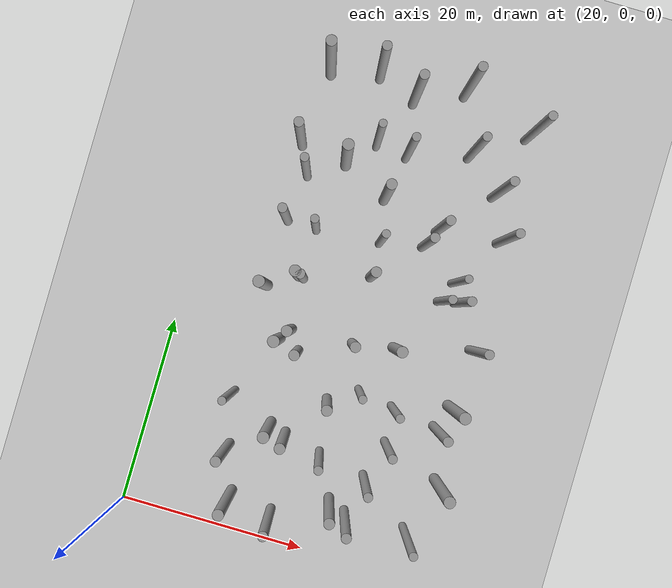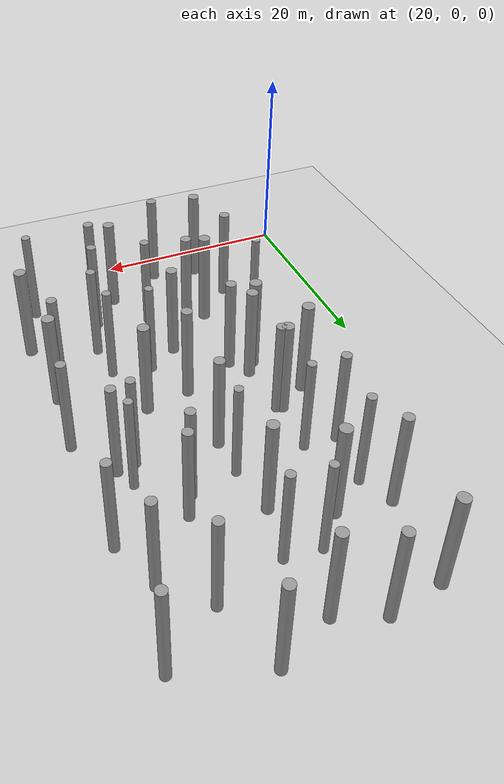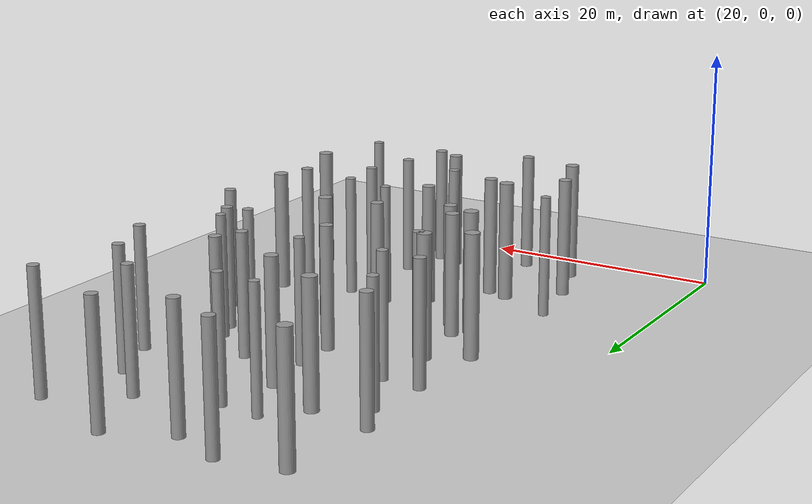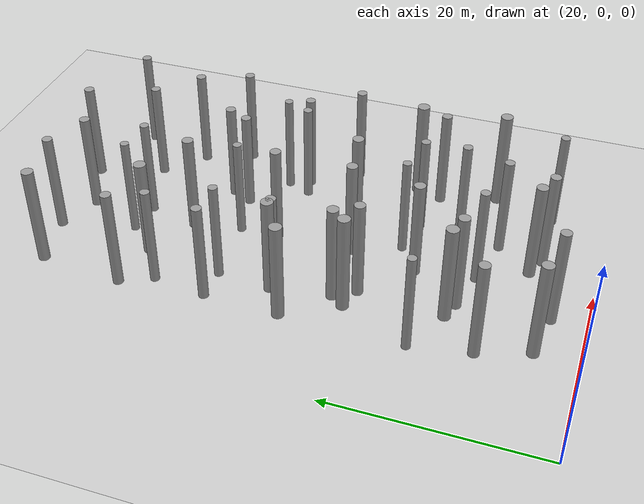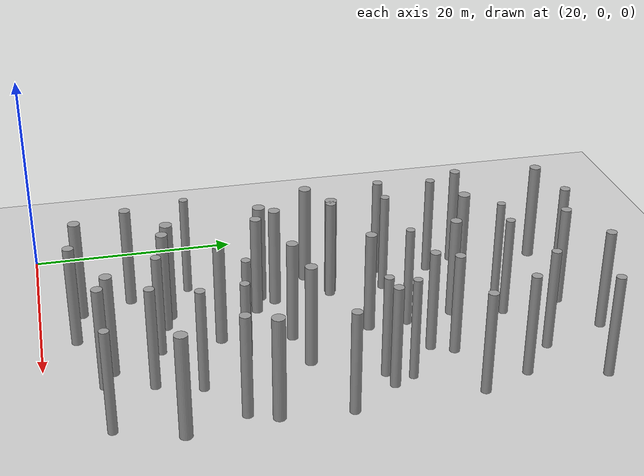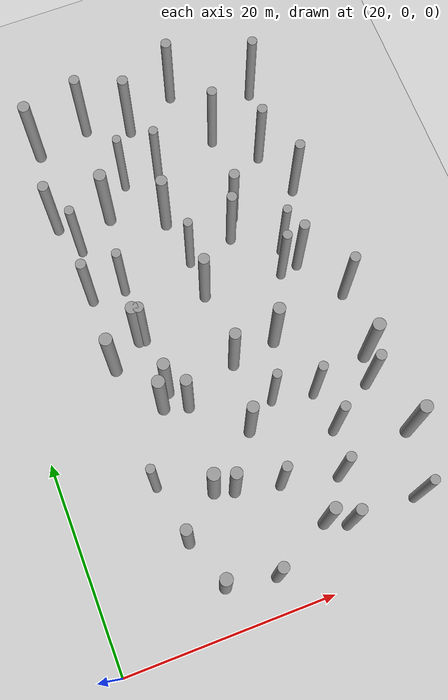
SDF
<sdf version="1.5">
 <world name="default">
  <include><uri>model://sun</uri></include>
  <include><uri>model://ground_plane</uri></include>
  <include><uri>model://asphalt_plane</uri></include>
  <model name="unit_cylinder_5">
   <pose>31.07888 4.03322 5.02000 0 -0 0</pose>
   <link name="link">
    <inertial>
     <mass>100</mass>
     <inertia><ixx>20</ixx><ixy>0</ixy><ixz>0</ixz><iyy>20</iyy><iyz>0</iyz><izz>20</izz></inertia>
    </inertial>
    <collision name="collision">
     <geometry><cylinder><radius>0.566</radius><length>10.000</length></cylinder></geometry>
    </collision>
    <visual name="visual">
     <geometry><cylinder><radius>0.566</radius><length>10.000</length></cylinder></geometry>
     <material>
      <script><name>Gazebo/Grey</name><uri>file://media/materials/scripts/gazebo.material</uri></script>
     </material>
    </visual>
   </link>
  </model>
  <model name="unit_cylinder_6">
   <pose>35.71000 3.27788 5.02000 0 -0 0</pose>
   <link name="link">
    <inertial>
     <mass>100</mass>
     <inertia><ixx>20</ixx><ixy>0</ixy><ixz>0</ixz><iyy>20</iyy><iyz>0</iyz><izz>20</izz></inertia>
    </inertial>
    <collision name="collision">
     <geometry><cylinder><radius>0.510</radius><length>10.000</length></cylinder></geometry>
    </collision>
    <visual name="visual">
     <geometry><cylinder><radius>0.510</radius><length>10.000</length></cylinder></geometry>
     <material>
      <script><name>Gazebo/Grey</name><uri>file://media/materials/scripts/gazebo.material</uri></script>
     </material>
    </visual>
   </link>
  </model>
  <model name="unit_cylinder_7">
   <pose>41.43956 6.17991 5.02000 0 -0 0</pose>
   <link name="link">
    <inertial>
     <mass>100</mass>
     <inertia><ixx>20</ixx><ixy>0</ixy><ixz>0</ixz><iyy>20</iyy><iyz>0</iyz><izz>20</izz></inertia>
    </inertial>
    <collision name="collision">
     <geometry><cylinder><radius>0.551</radius><length>10.000</length></cylinder></geometry>
    </collision>
    <visual name="visual">
     <geometry><cylinder><radius>0.551</radius><length>10.000</length></cylinder></geometry>
     <material>
      <script><name>Gazebo/Grey</name><uri>file://media/materials/scripts/gazebo.material</uri></script>
     </material>
    </visual>
   </link>
  </model>
  <model name="unit_cylinder_8">
   <pose>43.38921 5.31190 5.02000 0 -0 0</pose>
   <link name="link">
    <inertial>
     <mass>100</mass>
     <inertia><ixx>20</ixx><ixy>0</ixy><ixz>0</ixz><iyy>20</iyy><iyz>0</iyz><izz>20</izz></inertia>
    </inertial>
    <collision name="collision">
     <geometry><cylinder><radius>0.507</radius><length>10.000</length></cylinder></geometry>
    </collision>
    <visual name="visual">
     <geometry><cylinder><radius>0.507</radius><length>10.000</length></cylinder></geometry>
     <material>
      <script><name>Gazebo/Grey</name><uri>file://media/materials/scripts/gazebo.material</uri></script>
     </material>
    </visual>
   </link>
  </model>
  <model name="unit_cylinder_9">
   <pose>49.97748 5.42554 5.02000 0 -0 0</pose>
   <link name="link">
    <inertial>
     <mass>100</mass>
     <inertia><ixx>20</ixx><ixy>0</ixy><ixz>0</ixz><iyy>20</iyy><iyz>0</iyz><izz>20</izz></inertia>
    </inertial>
    <collision name="collision">
     <geometry><cylinder><radius>0.439</radius><length>10.000</length></cylinder></geometry>
    </collision>
    <visual name="visual">
     <geometry><cylinder><radius>0.439</radius><length>10.000</length></cylinder></geometry>
     <material>
      <script><name>Gazebo/Grey</name><uri>file://media/materials/scripts/gazebo.material</uri></script>
     </material>
    </visual>
   </link>
  </model>
  <model name="unit_cylinder_15">
   <pose>29.43761 8.84682 5.02000 0 -0 0</pose>
   <link name="link">
    <inertial>
     <mass>100</mass>
     <inertia><ixx>20</ixx><ixy>0</ixy><ixz>0</ixz><iyy>20</iyy><iyz>0</iyz><izz>20</izz></inertia>
    </inertial>
    <collision name="collision">
     <geometry><cylinder><radius>0.524</radius><length>10.000</length></cylinder></geometry>
    </collision>
    <visual name="visual">
     <geometry><cylinder><radius>0.524</radius><length>10.000</length></cylinder></geometry>
     <material>
      <script><name>Gazebo/Grey</name><uri>file://media/materials/scripts/gazebo.material</uri></script>
     </material>
    </visual>
   </link>
  </model>
  <model name="unit_cylinder_16">
   <pose>34.93175 11.71264 5.02000 0 -0 0</pose>
   <link name="link">
    <inertial>
     <mass>100</mass>
     <inertia><ixx>20</ixx><ixy>0</ixy><ixz>0</ixz><iyy>20</iyy><iyz>0</iyz><izz>20</izz></inertia>
    </inertial>
    <collision name="collision">
     <geometry><cylinder><radius>0.543</radius><length>10.000</length></cylinder></geometry>
    </collision>
    <visual name="visual">
     <geometry><cylinder><radius>0.543</radius><length>10.000</length></cylinder></geometry>
     <material>
      <script><name>Gazebo/Grey</name><uri>file://media/materials/scripts/gazebo.material</uri></script>
     </material>
    </visual>
   </link>
  </model>
  <model name="unit_cylinder_17">
   <pose>39.03436 10.75509 5.02000 0 -0 0</pose>
   <link name="link">
    <inertial>
     <mass>100</mass>
     <inertia><ixx>20</ixx><ixy>0</ixy><ixz>0</ixz><iyy>20</iyy><iyz>0</iyz><izz>20</izz></inertia>
    </inertial>
    <collision name="collision">
     <geometry><cylinder><radius>0.458</radius><length>10.000</length></cylinder></geometry>
    </collision>
    <visual name="visual">
     <geometry><cylinder><radius>0.458</radius><length>10.000</length></cylinder></geometry>
     <material>
      <script><name>Gazebo/Grey</name><uri>file://media/materials/scripts/gazebo.material</uri></script>
     </material>
    </visual>
   </link>
  </model>
  <model name="unit_cylinder_18">
   <pose>44.28129 9.62120 5.02000 0 -0 0</pose>
   <link name="link">
    <inertial>
     <mass>100</mass>
     <inertia><ixx>20</ixx><ixy>0</ixy><ixz>0</ixz><iyy>20</iyy><iyz>0</iyz><izz>20</izz></inertia>
    </inertial>
    <collision name="collision">
     <geometry><cylinder><radius>0.467</radius><length>10.000</length></cylinder></geometry>
    </collision>
    <visual name="visual">
     <geometry><cylinder><radius>0.467</radius><length>10.000</length></cylinder></geometry>
     <material>
      <script><name>Gazebo/Grey</name><uri>file://media/materials/scripts/gazebo.material</uri></script>
     </material>
    </visual>
   </link>
  </model>
  <model name="unit_cylinder_19">
   <pose>51.85830 11.31948 5.02000 0 -0 0</pose>
   <link name="link">
    <inertial>
     <mass>100</mass>
     <inertia><ixx>20</ixx><ixy>0</ixy><ixz>0</ixz><iyy>20</iyy><iyz>0</iyz><izz>20</izz></inertia>
    </inertial>
    <collision name="collision">
     <geometry><cylinder><radius>0.586</radius><length>10.000</length></cylinder></geometry>
    </collision>
    <visual name="visual">
     <geometry><cylinder><radius>0.586</radius><length>10.000</length></cylinder></geometry>
     <material>
      <script><name>Gazebo/Grey</name><uri>file://media/materials/scripts/gazebo.material</uri></script>
     </material>
    </visual>
   </link>
  </model>
  <model name="unit_cylinder_25">
   <pose>28.40187 14.56460 5.02000 0 -0 0</pose>
   <link name="link">
    <inertial>
     <mass>100</mass>
     <inertia><ixx>20</ixx><ixy>0</ixy><ixz>0</ixz><iyy>20</iyy><iyz>0</iyz><izz>20</izz></inertia>
    </inertial>
    <collision name="collision">
     <geometry><cylinder><radius>0.419</radius><length>10.000</length></cylinder></geometry>
    </collision>
    <visual name="visual">
     <geometry><cylinder><radius>0.419</radius><length>10.000</length></cylinder></geometry>
     <material>
      <script><name>Gazebo/Grey</name><uri>file://media/materials/scripts/gazebo.material</uri></script>
     </material>
    </visual>
   </link>
  </model>
  <model name="unit_cylinder_26">
   <pose>33.13048 12.30759 5.02000 0 -0 0</pose>
   <link name="link">
    <inertial>
     <mass>100</mass>
     <inertia><ixx>20</ixx><ixy>0</ixy><ixz>0</ixz><iyy>20</iyy><iyz>0</iyz><izz>20</izz></inertia>
    </inertial>
    <collision name="collision">
     <geometry><cylinder><radius>0.591</radius><length>10.000</length></cylinder></geometry>
    </collision>
    <visual name="visual">
     <geometry><cylinder><radius>0.591</radius><length>10.000</length></cylinder></geometry>
     <material>
      <script><name>Gazebo/Grey</name><uri>file://media/materials/scripts/gazebo.material</uri></script>
     </material>
    </visual>
   </link>
  </model>
  <model name="unit_cylinder_27">
   <pose>38.22628 16.43758 5.02000 0 -0 0</pose>
   <link name="link">
    <inertial>
     <mass>100</mass>
     <inertia><ixx>20</ixx><ixy>0</ixy><ixz>0</ixz><iyy>20</iyy><iyz>0</iyz><izz>20</izz></inertia>
    </inertial>
    <collision name="collision">
     <geometry><cylinder><radius>0.539</radius><length>10.000</length></cylinder></geometry>
    </collision>
    <visual name="visual">
     <geometry><cylinder><radius>0.539</radius><length>10.000</length></cylinder></geometry>
     <material>
      <script><name>Gazebo/Grey</name><uri>file://media/materials/scripts/gazebo.material</uri></script>
     </material>
    </visual>
   </link>
  </model>
  <model name="unit_cylinder_28">
   <pose>45.51048 13.75221 5.02000 0 -0 0</pose>
   <link name="link">
    <inertial>
     <mass>100</mass>
     <inertia><ixx>20</ixx><ixy>0</ixy><ixz>0</ixz><iyy>20</iyy><iyz>0</iyz><izz>20</izz></inertia>
    </inertial>
    <collision name="collision">
     <geometry><cylinder><radius>0.456</radius><length>10.000</length></cylinder></geometry>
    </collision>
    <visual name="visual">
     <geometry><cylinder><radius>0.456</radius><length>10.000</length></cylinder></geometry>
     <material>
      <script><name>Gazebo/Grey</name><uri>file://media/materials/scripts/gazebo.material</uri></script>
     </material>
    </visual>
   </link>
  </model>
  <model name="unit_cylinder_29">
   <pose>50.10931 16.80766 5.02000 0 -0 0</pose>
   <link name="link">
    <inertial>
     <mass>100</mass>
     <inertia><ixx>20</ixx><ixy>0</ixy><ixz>0</ixz><iyy>20</iyy><iyz>0</iyz><izz>20</izz></inertia>
    </inertial>
    <collision name="collision">
     <geometry><cylinder><radius>0.493</radius><length>10.000</length></cylinder></geometry>
    </collision>
    <visual name="visual">
     <geometry><cylinder><radius>0.493</radius><length>10.000</length></cylinder></geometry>
     <material>
      <script><name>Gazebo/Grey</name><uri>file://media/materials/scripts/gazebo.material</uri></script>
     </material>
    </visual>
   </link>
  </model>
  <model name="unit_cylinder_35">
   <pose>31.51937 21.32872 5.02000 0 -0 0</pose>
   <link name="link">
    <inertial>
     <mass>100</mass>
     <inertia><ixx>20</ixx><ixy>0</ixy><ixz>0</ixz><iyy>20</iyy><iyz>0</iyz><izz>20</izz></inertia>
    </inertial>
    <collision name="collision">
     <geometry><cylinder><radius>0.593</radius><length>10.000</length></cylinder></geometry>
    </collision>
    <visual name="visual">
     <geometry><cylinder><radius>0.593</radius><length>10.000</length></cylinder></geometry>
     <material>
      <script><name>Gazebo/Grey</name><uri>file://media/materials/scripts/gazebo.material</uri></script>
     </material>
    </visual>
   </link>
  </model>
  <model name="unit_cylinder_36">
   <pose>33.77373 20.61455 5.02000 0 -0 0</pose>
   <link name="link">
    <inertial>
     <mass>100</mass>
     <inertia><ixx>20</ixx><ixy>0</ixy><ixz>0</ixz><iyy>20</iyy><iyz>0</iyz><izz>20</izz></inertia>
    </inertial>
    <collision name="collision">
     <geometry><cylinder><radius>0.526</radius><length>10.000</length></cylinder></geometry>
    </collision>
    <visual name="visual">
     <geometry><cylinder><radius>0.526</radius><length>10.000</length></cylinder></geometry>
     <material>
      <script><name>Gazebo/Grey</name><uri>file://media/materials/scripts/gazebo.material</uri></script>
     </material>
    </visual>
   </link>
  </model>
  <model name="unit_cylinder_37">
   <pose>41.20551 18.40178 5.02000 0 -0 0</pose>
   <link name="link">
    <inertial>
     <mass>100</mass>
     <inertia><ixx>20</ixx><ixy>0</ixy><ixz>0</ixz><iyy>20</iyy><iyz>0</iyz><izz>20</izz></inertia>
    </inertial>
    <collision name="collision">
     <geometry><cylinder><radius>0.414</radius><length>10.000</length></cylinder></geometry>
    </collision>
    <visual name="visual">
     <geometry><cylinder><radius>0.414</radius><length>10.000</length></cylinder></geometry>
     <material>
      <script><name>Gazebo/Grey</name><uri>file://media/materials/scripts/gazebo.material</uri></script>
     </material>
    </visual>
   </link>
  </model>
  <model name="unit_cylinder_38">
   <pose>45.11447 17.64728 5.02000 0 -0 0</pose>
   <link name="link">
    <inertial>
     <mass>100</mass>
     <inertia><ixx>20</ixx><ixy>0</ixy><ixz>0</ixz><iyy>20</iyy><iyz>0</iyz><izz>20</izz></inertia>
    </inertial>
    <collision name="collision">
     <geometry><cylinder><radius>0.433</radius><length>10.000</length></cylinder></geometry>
    </collision>
    <visual name="visual">
     <geometry><cylinder><radius>0.433</radius><length>10.000</length></cylinder></geometry>
     <material>
      <script><name>Gazebo/Grey</name><uri>file://media/materials/scripts/gazebo.material</uri></script>
     </material>
    </visual>
   </link>
  </model>
  <model name="unit_cylinder_39">
   <pose>51.04535 19.37710 5.02000 0 -0 0</pose>
   <link name="link">
    <inertial>
     <mass>100</mass>
     <inertia><ixx>20</ixx><ixy>0</ixy><ixz>0</ixz><iyy>20</iyy><iyz>0</iyz><izz>20</izz></inertia>
    </inertial>
    <collision name="collision">
     <geometry><cylinder><radius>0.591</radius><length>10.000</length></cylinder></geometry>
    </collision>
    <visual name="visual">
     <geometry><cylinder><radius>0.591</radius><length>10.000</length></cylinder></geometry>
     <material>
      <script><name>Gazebo/Grey</name><uri>file://media/materials/scripts/gazebo.material</uri></script>
     </material>
    </visual>
   </link>
  </model>
  <model name="unit_cylinder_45">
   <pose>28.58894 26.43793 5.02000 0 -0 0</pose>
   <link name="link">
    <inertial>
     <mass>100</mass>
     <inertia><ixx>20</ixx><ixy>0</ixy><ixz>0</ixz><iyy>20</iyy><iyz>0</iyz><izz>20</izz></inertia>
    </inertial>
    <collision name="collision">
     <geometry><cylinder><radius>0.590</radius><length>10.000</length></cylinder></geometry>
    </collision>
    <visual name="visual">
     <geometry><cylinder><radius>0.590</radius><length>10.000</length></cylinder></geometry>
     <material>
      <script><name>Gazebo/Grey</name><uri>file://media/materials/scripts/gazebo.material</uri></script>
     </material>
    </visual>
   </link>
  </model>
  <model name="unit_cylinder_46">
   <pose>32.45924 22.62740 5.02000 0 -0 0</pose>
   <link name="link">
    <inertial>
     <mass>100</mass>
     <inertia><ixx>20</ixx><ixy>0</ixy><ixz>0</ixz><iyy>20</iyy><iyz>0</iyz><izz>20</izz></inertia>
    </inertial>
    <collision name="collision">
     <geometry><cylinder><radius>0.552</radius><length>10.000</length></cylinder></geometry>
    </collision>
    <visual name="visual">
     <geometry><cylinder><radius>0.552</radius><length>10.000</length></cylinder></geometry>
     <material>
      <script><name>Gazebo/Grey</name><uri>file://media/materials/scripts/gazebo.material</uri></script>
     </material>
    </visual>
   </link>
  </model>
  <model name="unit_cylinder_47">
   <pose>39.14699 22.98602 5.02000 0 -0 0</pose>
   <link name="link">
    <inertial>
     <mass>100</mass>
     <inertia><ixx>20</ixx><ixy>0</ixy><ixz>0</ixz><iyy>20</iyy><iyz>0</iyz><izz>20</izz></inertia>
    </inertial>
    <collision name="collision">
     <geometry><cylinder><radius>0.527</radius><length>10.000</length></cylinder></geometry>
    </collision>
    <visual name="visual">
     <geometry><cylinder><radius>0.527</radius><length>10.000</length></cylinder></geometry>
     <material>
      <script><name>Gazebo/Grey</name><uri>file://media/materials/scripts/gazebo.material</uri></script>
     </material>
    </visual>
   </link>
  </model>
  <model name="unit_cylinder_48">
   <pose>43.55369 23.77163 5.02000 0 -0 0</pose>
   <link name="link">
    <inertial>
     <mass>100</mass>
     <inertia><ixx>20</ixx><ixy>0</ixy><ixz>0</ixz><iyy>20</iyy><iyz>0</iyz><izz>20</izz></inertia>
    </inertial>
    <collision name="collision">
     <geometry><cylinder><radius>0.561</radius><length>10.000</length></cylinder></geometry>
    </collision>
    <visual name="visual">
     <geometry><cylinder><radius>0.561</radius><length>10.000</length></cylinder></geometry>
     <material>
      <script><name>Gazebo/Grey</name><uri>file://media/materials/scripts/gazebo.material</uri></script>
     </material>
    </visual>
   </link>
  </model>
  <model name="unit_cylinder_49">
   <pose>51.55406 25.83410 5.02000 0 -0 0</pose>
   <link name="link">
    <inertial>
     <mass>100</mass>
     <inertia><ixx>20</ixx><ixy>0</ixy><ixz>0</ixz><iyy>20</iyy><iyz>0</iyz><izz>20</izz></inertia>
    </inertial>
    <collision name="collision">
     <geometry><cylinder><radius>0.478</radius><length>10.000</length></cylinder></geometry>
    </collision>
    <visual name="visual">
     <geometry><cylinder><radius>0.478</radius><length>10.000</length></cylinder></geometry>
     <material>
      <script><name>Gazebo/Grey</name><uri>file://media/materials/scripts/gazebo.material</uri></script>
     </material>
    </visual>
   </link>
  </model>
  <model name="unit_cylinder_55">
   <pose>31.62385 28.35570 5.02000 0 -0 0</pose>
   <link name="link">
    <inertial>
     <mass>100</mass>
     <inertia><ixx>20</ixx><ixy>0</ixy><ixz>0</ixz><iyy>20</iyy><iyz>0</iyz><izz>20</izz></inertia>
    </inertial>
    <collision name="collision">
     <geometry><cylinder><radius>0.575</radius><length>10.000</length></cylinder></geometry>
    </collision>
    <visual name="visual">
     <geometry><cylinder><radius>0.575</radius><length>10.000</length></cylinder></geometry>
     <material>
      <script><name>Gazebo/Grey</name><uri>file://media/materials/scripts/gazebo.material</uri></script>
     </material>
    </visual>
   </link>
  </model>
  <model name="unit_cylinder_56">
   <pose>32.16408 28.21311 5.02000 0 -0 0</pose>
   <link name="link">
    <inertial>
     <mass>100</mass>
     <inertia><ixx>20</ixx><ixy>0</ixy><ixz>0</ixz><iyy>20</iyy><iyz>0</iyz><izz>20</izz></inertia>
    </inertial>
    <collision name="collision">
     <geometry><cylinder><radius>0.490</radius><length>10.000</length></cylinder></geometry>
    </collision>
    <visual name="visual">
     <geometry><cylinder><radius>0.490</radius><length>10.000</length></cylinder></geometry>
     <material>
      <script><name>Gazebo/Grey</name><uri>file://media/materials/scripts/gazebo.material</uri></script>
     </material>
    </visual>
   </link>
  </model>
  <model name="unit_cylinder_57">
   <pose>39.05242 30.37831 5.02000 0 -0 0</pose>
   <link name="link">
    <inertial>
     <mass>100</mass>
     <inertia><ixx>20</ixx><ixy>0</ixy><ixz>0</ixz><iyy>20</iyy><iyz>0</iyz><izz>20</izz></inertia>
    </inertial>
    <collision name="collision">
     <geometry><cylinder><radius>0.522</radius><length>10.000</length></cylinder></geometry>
    </collision>
    <visual name="visual">
     <geometry><cylinder><radius>0.522</radius><length>10.000</length></cylinder></geometry>
     <material>
      <script><name>Gazebo/Grey</name><uri>file://media/materials/scripts/gazebo.material</uri></script>
     </material>
    </visual>
   </link>
  </model>
  <model name="unit_cylinder_58">
   <pose>46.76336 29.89266 5.02000 0 -0 0</pose>
   <link name="link">
    <inertial>
     <mass>100</mass>
     <inertia><ixx>20</ixx><ixy>0</ixy><ixz>0</ixz><iyy>20</iyy><iyz>0</iyz><izz>20</izz></inertia>
    </inertial>
    <collision name="collision">
     <geometry><cylinder><radius>0.439</radius><length>10.000</length></cylinder></geometry>
    </collision>
    <visual name="visual">
     <geometry><cylinder><radius>0.439</radius><length>10.000</length></cylinder></geometry>
     <material>
      <script><name>Gazebo/Grey</name><uri>file://media/materials/scripts/gazebo.material</uri></script>
     </material>
    </visual>
   </link>
  </model>
  <model name="unit_cylinder_59">
   <pose>48.55945 30.24320 5.02000 0 -0 0</pose>
   <link name="link">
    <inertial>
     <mass>100</mass>
     <inertia><ixx>20</ixx><ixy>0</ixy><ixz>0</ixz><iyy>20</iyy><iyz>0</iyz><izz>20</izz></inertia>
    </inertial>
    <collision name="collision">
     <geometry><cylinder><radius>0.474</radius><length>10.000</length></cylinder></geometry>
    </collision>
    <visual name="visual">
     <geometry><cylinder><radius>0.474</radius><length>10.000</length></cylinder></geometry>
     <material>
      <script><name>Gazebo/Grey</name><uri>file://media/materials/scripts/gazebo.material</uri></script>
     </material>
    </visual>
   </link>
  </model>
  <model name="unit_cylinder_65">
   <pose>28.79717 33.75268 5.02000 0 -0 0</pose>
   <link name="link">
    <inertial>
     <mass>100</mass>
     <inertia><ixx>20</ixx><ixy>0</ixy><ixz>0</ixz><iyy>20</iyy><iyz>0</iyz><izz>20</izz></inertia>
    </inertial>
    <collision name="collision">
     <geometry><cylinder><radius>0.482</radius><length>10.000</length></cylinder></geometry>
    </collision>
    <visual name="visual">
     <geometry><cylinder><radius>0.482</radius><length>10.000</length></cylinder></geometry>
     <material>
      <script><name>Gazebo/Grey</name><uri>file://media/materials/scripts/gazebo.material</uri></script>
     </material>
    </visual>
   </link>
  </model>
  <model name="unit_cylinder_66">
   <pose>32.02999 33.61672 5.02000 0 -0 0</pose>
   <link name="link">
    <inertial>
     <mass>100</mass>
     <inertia><ixx>20</ixx><ixy>0</ixy><ixz>0</ixz><iyy>20</iyy><iyz>0</iyz><izz>20</izz></inertia>
    </inertial>
    <collision name="collision">
     <geometry><cylinder><radius>0.431</radius><length>10.000</length></cylinder></geometry>
    </collision>
    <visual name="visual">
     <geometry><cylinder><radius>0.431</radius><length>10.000</length></cylinder></geometry>
     <material>
      <script><name>Gazebo/Grey</name><uri>file://media/materials/scripts/gazebo.material</uri></script>
     </material>
    </visual>
   </link>
  </model>
  <model name="unit_cylinder_67">
   <pose>38.94311 34.12823 5.02000 0 -0 0</pose>
   <link name="link">
    <inertial>
     <mass>100</mass>
     <inertia><ixx>20</ixx><ixy>0</ixy><ixz>0</ixz><iyy>20</iyy><iyz>0</iyz><izz>20</izz></inertia>
    </inertial>
    <collision name="collision">
     <geometry><cylinder><radius>0.417</radius><length>10.000</length></cylinder></geometry>
    </collision>
    <visual name="visual">
     <geometry><cylinder><radius>0.417</radius><length>10.000</length></cylinder></geometry>
     <material>
      <script><name>Gazebo/Grey</name><uri>file://media/materials/scripts/gazebo.material</uri></script>
     </material>
    </visual>
   </link>
  </model>
  <model name="unit_cylinder_68">
   <pose>43.50705 35.07129 5.02000 0 -0 0</pose>
   <link name="link">
    <inertial>
     <mass>100</mass>
     <inertia><ixx>20</ixx><ixy>0</ixy><ixz>0</ixz><iyy>20</iyy><iyz>0</iyz><izz>20</izz></inertia>
    </inertial>
    <collision name="collision">
     <geometry><cylinder><radius>0.474</radius><length>10.000</length></cylinder></geometry>
    </collision>
    <visual name="visual">
     <geometry><cylinder><radius>0.474</radius><length>10.000</length></cylinder></geometry>
     <material>
      <script><name>Gazebo/Grey</name><uri>file://media/materials/scripts/gazebo.material</uri></script>
     </material>
    </visual>
   </link>
  </model>
  <model name="unit_cylinder_69">
   <pose>47.67843 32.19162 5.02000 0 -0 0</pose>
   <link name="link">
    <inertial>
     <mass>100</mass>
     <inertia><ixx>20</ixx><ixy>0</ixy><ixz>0</ixz><iyy>20</iyy><iyz>0</iyz><izz>20</izz></inertia>
    </inertial>
    <collision name="collision">
     <geometry><cylinder><radius>0.405</radius><length>10.000</length></cylinder></geometry>
    </collision>
    <visual name="visual">
     <geometry><cylinder><radius>0.405</radius><length>10.000</length></cylinder></geometry>
     <material>
      <script><name>Gazebo/Grey</name><uri>file://media/materials/scripts/gazebo.material</uri></script>
     </material>
    </visual>
   </link>
  </model>
  <model name="unit_cylinder_75">
   <pose>29.46335 38.95762 5.02000 0 -0 0</pose>
   <link name="link">
    <inertial>
     <mass>100</mass>
     <inertia><ixx>20</ixx><ixy>0</ixy><ixz>0</ixz><iyy>20</iyy><iyz>0</iyz><izz>20</izz></inertia>
    </inertial>
    <collision name="collision">
     <geometry><cylinder><radius>0.445</radius><length>10.000</length></cylinder></geometry>
    </collision>
    <visual name="visual">
     <geometry><cylinder><radius>0.445</radius><length>10.000</length></cylinder></geometry>
     <material>
      <script><name>Gazebo/Grey</name><uri>file://media/materials/scripts/gazebo.material</uri></script>
     </material>
    </visual>
   </link>
  </model>
  <model name="unit_cylinder_76">
   <pose>33.12535 41.26922 5.02000 0 -0 0</pose>
   <link name="link">
    <inertial>
     <mass>100</mass>
     <inertia><ixx>20</ixx><ixy>0</ixy><ixz>0</ixz><iyy>20</iyy><iyz>0</iyz><izz>20</izz></inertia>
    </inertial>
    <collision name="collision">
     <geometry><cylinder><radius>0.578</radius><length>10.000</length></cylinder></geometry>
    </collision>
    <visual name="visual">
     <geometry><cylinder><radius>0.578</radius><length>10.000</length></cylinder></geometry>
     <material>
      <script><name>Gazebo/Grey</name><uri>file://media/materials/scripts/gazebo.material</uri></script>
     </material>
    </visual>
   </link>
  </model>
  <model name="unit_cylinder_77">
   <pose>38.13004 38.79673 5.02000 0 -0 0</pose>
   <link name="link">
    <inertial>
     <mass>100</mass>
     <inertia><ixx>20</ixx><ixy>0</ixy><ixz>0</ixz><iyy>20</iyy><iyz>0</iyz><izz>20</izz></inertia>
    </inertial>
    <collision name="collision">
     <geometry><cylinder><radius>0.537</radius><length>10.000</length></cylinder></geometry>
    </collision>
    <visual name="visual">
     <geometry><cylinder><radius>0.537</radius><length>10.000</length></cylinder></geometry>
     <material>
      <script><name>Gazebo/Grey</name><uri>file://media/materials/scripts/gazebo.material</uri></script>
     </material>
    </visual>
   </link>
  </model>
  <model name="unit_cylinder_78">
   <pose>44.48415 37.06874 5.02000 0 -0 0</pose>
   <link name="link">
    <inertial>
     <mass>100</mass>
     <inertia><ixx>20</ixx><ixy>0</ixy><ixz>0</ixz><iyy>20</iyy><iyz>0</iyz><izz>20</izz></inertia>
    </inertial>
    <collision name="collision">
     <geometry><cylinder><radius>0.487</radius><length>10.000</length></cylinder></geometry>
    </collision>
    <visual name="visual">
     <geometry><cylinder><radius>0.487</radius><length>10.000</length></cylinder></geometry>
     <material>
      <script><name>Gazebo/Grey</name><uri>file://media/materials/scripts/gazebo.material</uri></script>
     </material>
    </visual>
   </link>
  </model>
  <model name="unit_cylinder_79">
   <pose>51.16108 37.72190 5.02000 0 -0 0</pose>
   <link name="link">
    <inertial>
     <mass>100</mass>
     <inertia><ixx>20</ixx><ixy>0</ixy><ixz>0</ixz><iyy>20</iyy><iyz>0</iyz><izz>20</izz></inertia>
    </inertial>
    <collision name="collision">
     <geometry><cylinder><radius>0.466</radius><length>10.000</length></cylinder></geometry>
    </collision>
    <visual name="visual">
     <geometry><cylinder><radius>0.466</radius><length>10.000</length></cylinder></geometry>
     <material>
      <script><name>Gazebo/Grey</name><uri>file://media/materials/scripts/gazebo.material</uri></script>
     </material>
    </visual>
   </link>
  </model>
  <model name="unit_cylinder_85">
   <pose>28.01033 42.01989 5.02000 0 -0 0</pose>
   <link name="link">
    <inertial>
     <mass>100</mass>
     <inertia><ixx>20</ixx><ixy>0</ixy><ixz>0</ixz><iyy>20</iyy><iyz>0</iyz><izz>20</izz></inertia>
    </inertial>
    <collision name="collision">
     <geometry><cylinder><radius>0.502</radius><length>10.000</length></cylinder></geometry>
    </collision>
    <visual name="visual">
     <geometry><cylinder><radius>0.502</radius><length>10.000</length></cylinder></geometry>
     <material>
      <script><name>Gazebo/Grey</name><uri>file://media/materials/scripts/gazebo.material</uri></script>
     </material>
    </visual>
   </link>
  </model>
  <model name="unit_cylinder_86">
   <pose>35.72241 44.11874 5.02000 0 -0 0</pose>
   <link name="link">
    <inertial>
     <mass>100</mass>
     <inertia><ixx>20</ixx><ixy>0</ixy><ixz>0</ixz><iyy>20</iyy><iyz>0</iyz><izz>20</izz></inertia>
    </inertial>
    <collision name="collision">
     <geometry><cylinder><radius>0.406</radius><length>10.000</length></cylinder></geometry>
    </collision>
    <visual name="visual">
     <geometry><cylinder><radius>0.406</radius><length>10.000</length></cylinder></geometry>
     <material>
      <script><name>Gazebo/Grey</name><uri>file://media/materials/scripts/gazebo.material</uri></script>
     </material>
    </visual>
   </link>
  </model>
  <model name="unit_cylinder_87">
   <pose>39.13400 43.76781 5.02000 0 -0 0</pose>
   <link name="link">
    <inertial>
     <mass>100</mass>
     <inertia><ixx>20</ixx><ixy>0</ixy><ixz>0</ixz><iyy>20</iyy><iyz>0</iyz><izz>20</izz></inertia>
    </inertial>
    <collision name="collision">
     <geometry><cylinder><radius>0.431</radius><length>10.000</length></cylinder></geometry>
    </collision>
    <visual name="visual">
     <geometry><cylinder><radius>0.431</radius><length>10.000</length></cylinder></geometry>
     <material>
      <script><name>Gazebo/Grey</name><uri>file://media/materials/scripts/gazebo.material</uri></script>
     </material>
    </visual>
   </link>
  </model>
  <model name="unit_cylinder_88">
   <pose>45.58510 45.66421 5.02000 0 -0 0</pose>
   <link name="link">
    <inertial>
     <mass>100</mass>
     <inertia><ixx>20</ixx><ixy>0</ixy><ixz>0</ixz><iyy>20</iyy><iyz>0</iyz><izz>20</izz></inertia>
    </inertial>
    <collision name="collision">
     <geometry><cylinder><radius>0.460</radius><length>10.000</length></cylinder></geometry>
    </collision>
    <visual name="visual">
     <geometry><cylinder><radius>0.460</radius><length>10.000</length></cylinder></geometry>
     <material>
      <script><name>Gazebo/Grey</name><uri>file://media/materials/scripts/gazebo.material</uri></script>
     </material>
    </visual>
   </link>
  </model>
  <model name="unit_cylinder_89">
   <pose>49.27358 42.32662 5.02000 0 -0 0</pose>
   <link name="link">
    <inertial>
     <mass>100</mass>
     <inertia><ixx>20</ixx><ixy>0</ixy><ixz>0</ixz><iyy>20</iyy><iyz>0</iyz><izz>20</izz></inertia>
    </inertial>
    <collision name="collision">
     <geometry><cylinder><radius>0.469</radius><length>10.000</length></cylinder></geometry>
    </collision>
    <visual name="visual">
     <geometry><cylinder><radius>0.469</radius><length>10.000</length></cylinder></geometry>
     <material>
      <script><name>Gazebo/Grey</name><uri>file://media/materials/scripts/gazebo.material</uri></script>
     </material>
    </visual>
   </link>
  </model>
  <model name="unit_cylinder_95">
   <pose>28.82705 50.29019 5.02000 0 -0 0</pose>
   <link name="link">
    <inertial>
     <mass>100</mass>
     <inertia><ixx>20</ixx><ixy>0</ixy><ixz>0</ixz><iyy>20</iyy><iyz>0</iyz><izz>20</izz></inertia>
    </inertial>
    <collision name="collision">
     <geometry><cylinder><radius>0.559</radius><length>10.000</length></cylinder></geometry>
    </collision>
    <visual name="visual">
     <geometry><cylinder><radius>0.559</radius><length>10.000</length></cylinder></geometry>
     <material>
      <script><name>Gazebo/Grey</name><uri>file://media/materials/scripts/gazebo.material</uri></script>
     </material>
    </visual>
   </link>
  </model>
  <model name="unit_cylinder_96">
   <pose>34.04787 51.30682 5.02000 0 -0 0</pose>
   <link name="link">
    <inertial>
     <mass>100</mass>
     <inertia><ixx>20</ixx><ixy>0</ixy><ixz>0</ixz><iyy>20</iyy><iyz>0</iyz><izz>20</izz></inertia>
    </inertial>
    <collision name="collision">
     <geometry><cylinder><radius>0.488</radius><length>10.000</length></cylinder></geometry>
    </collision>
    <visual name="visual">
     <geometry><cylinder><radius>0.488</radius><length>10.000</length></cylinder></geometry>
     <material>
      <script><name>Gazebo/Grey</name><uri>file://media/materials/scripts/gazebo.material</uri></script>
     </material>
    </visual>
   </link>
  </model>
  <model name="unit_cylinder_97">
   <pose>38.22785 49.67277 5.02000 0 -0 0</pose>
   <link name="link">
    <inertial>
     <mass>100</mass>
     <inertia><ixx>20</ixx><ixy>0</ixy><ixz>0</ixz><iyy>20</iyy><iyz>0</iyz><izz>20</izz></inertia>
    </inertial>
    <collision name="collision">
     <geometry><cylinder><radius>0.501</radius><length>10.000</length></cylinder></geometry>
    </collision>
    <visual name="visual">
     <geometry><cylinder><radius>0.501</radius><length>10.000</length></cylinder></geometry>
     <material>
      <script><name>Gazebo/Grey</name><uri>file://media/materials/scripts/gazebo.material</uri></script>
     </material>
    </visual>
   </link>
  </model>
  <model name="unit_cylinder_98">
   <pose>43.33234 51.94112 5.02000 0 -0 0</pose>
   <link name="link">
    <inertial>
     <mass>100</mass>
     <inertia><ixx>20</ixx><ixy>0</ixy><ixz>0</ixz><iyy>20</iyy><iyz>0</iyz><izz>20</izz></inertia>
    </inertial>
    <collision name="collision">
     <geometry><cylinder><radius>0.489</radius><length>10.000</length></cylinder></geometry>
    </collision>
    <visual name="visual">
     <geometry><cylinder><radius>0.489</radius><length>10.000</length></cylinder></geometry>
     <material>
      <script><name>Gazebo/Grey</name><uri>file://media/materials/scripts/gazebo.material</uri></script>
     </material>
    </visual>
   </link>
  </model>
  <model name="unit_cylinder_99">
   <pose>51.01627 49.31165 5.02000 0 -0 0</pose>
   <link name="link">
    <inertial>
     <mass>100</mass>
     <inertia><ixx>20</ixx><ixy>0</ixy><ixz>0</ixz><iyy>20</iyy><iyz>0</iyz><izz>20</izz></inertia>
    </inertial>
    <collision name="collision">
     <geometry><cylinder><radius>0.457</radius><length>10.000</length></cylinder></geometry>
    </collision>
    <visual name="visual">
     <geometry><cylinder><radius>0.457</radius><length>10.000</length></cylinder></geometry>
     <material>
      <script><name>Gazebo/Grey</name><uri>file://media/materials/scripts/gazebo.material</uri></script>
     </material>
    </visual>
   </link>
  </model>
 </world>
</sdf>
